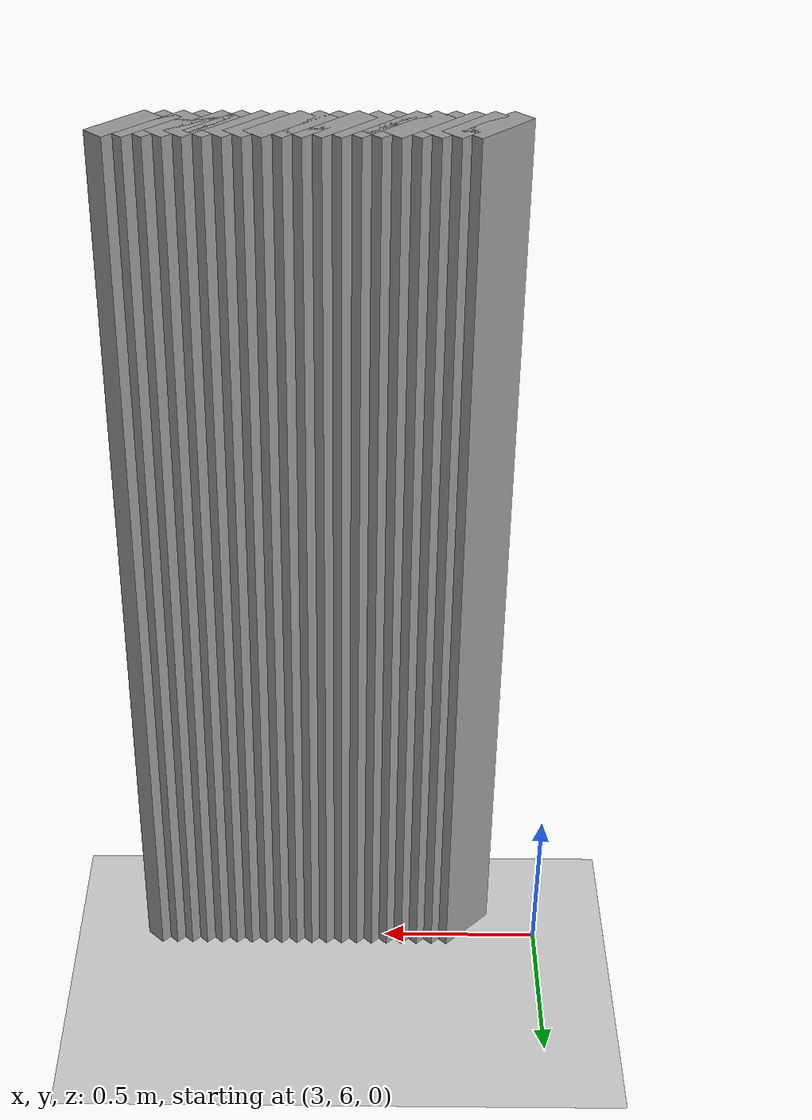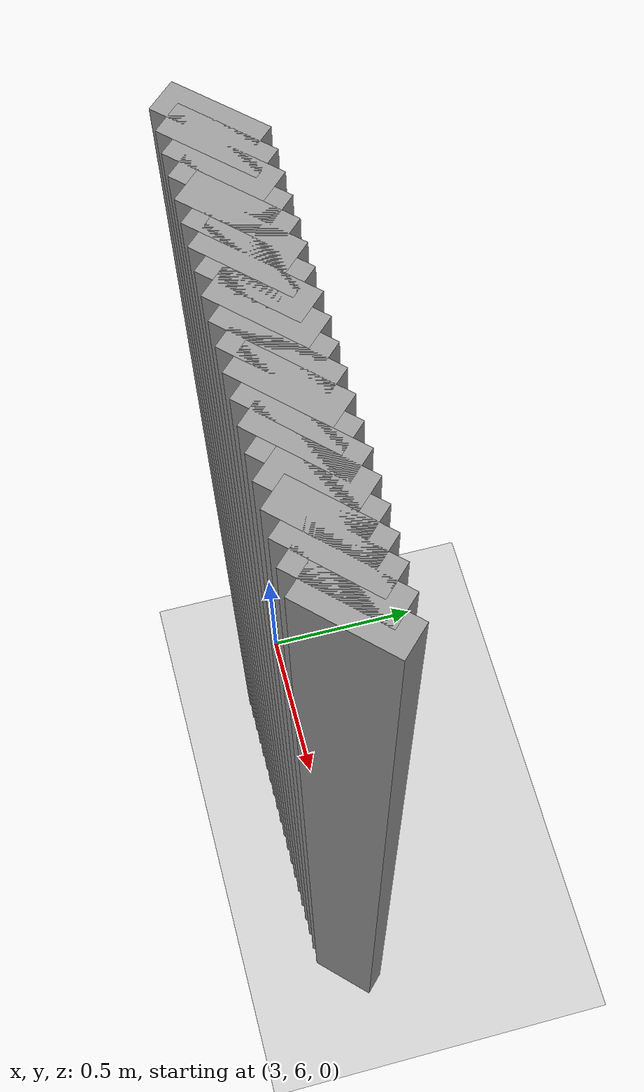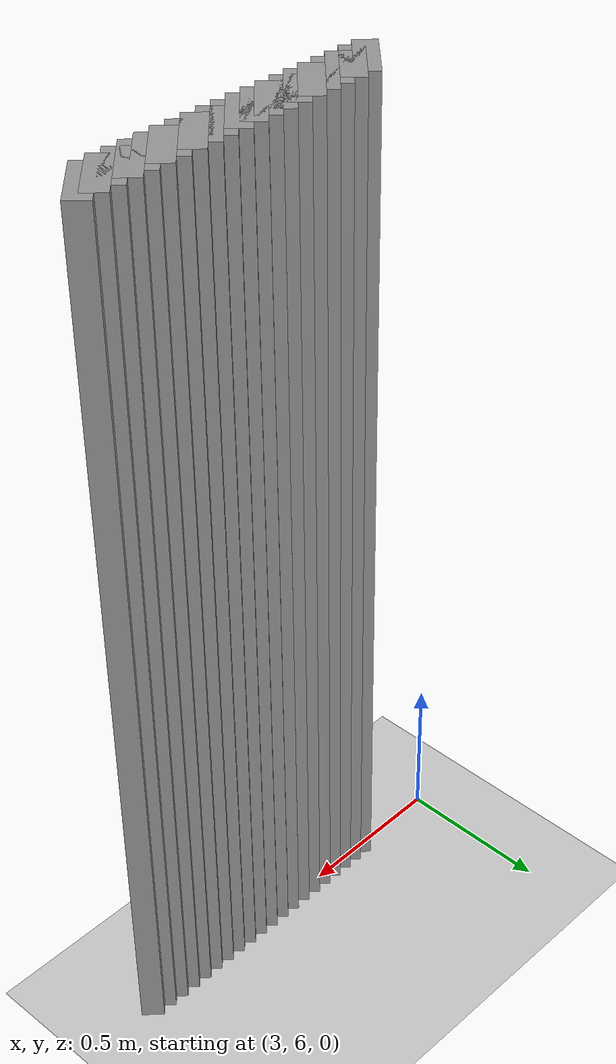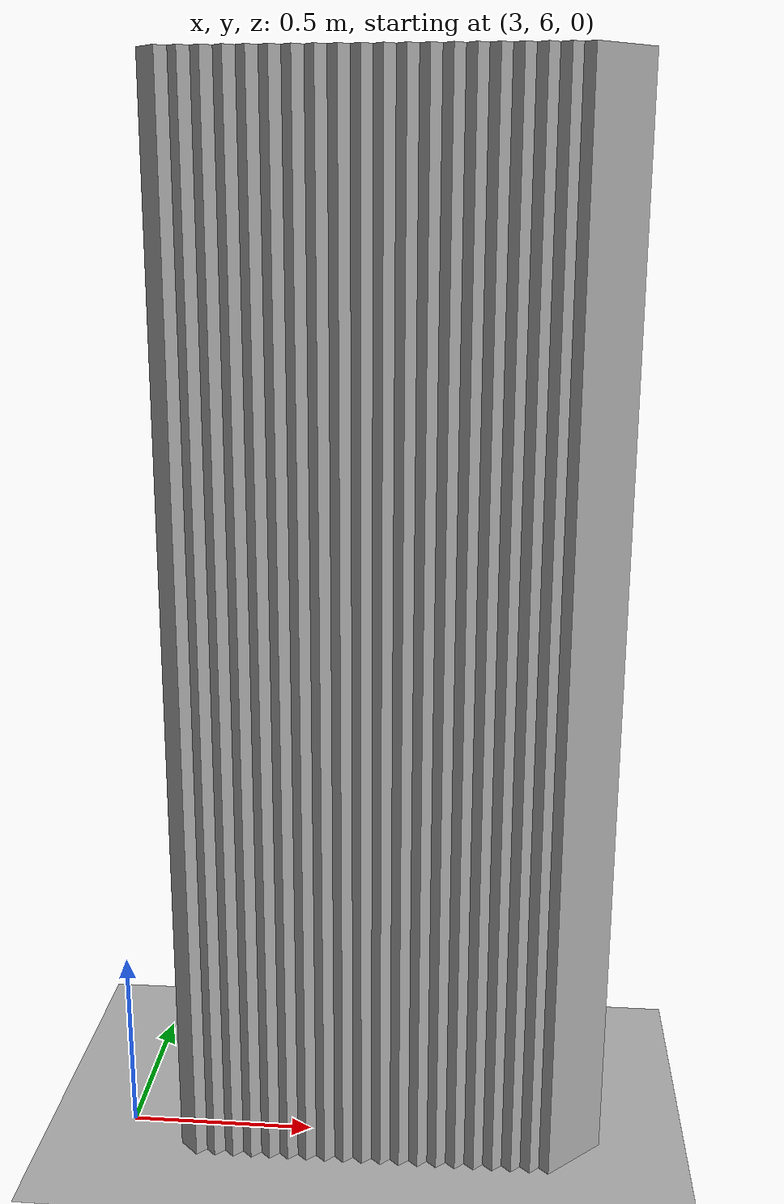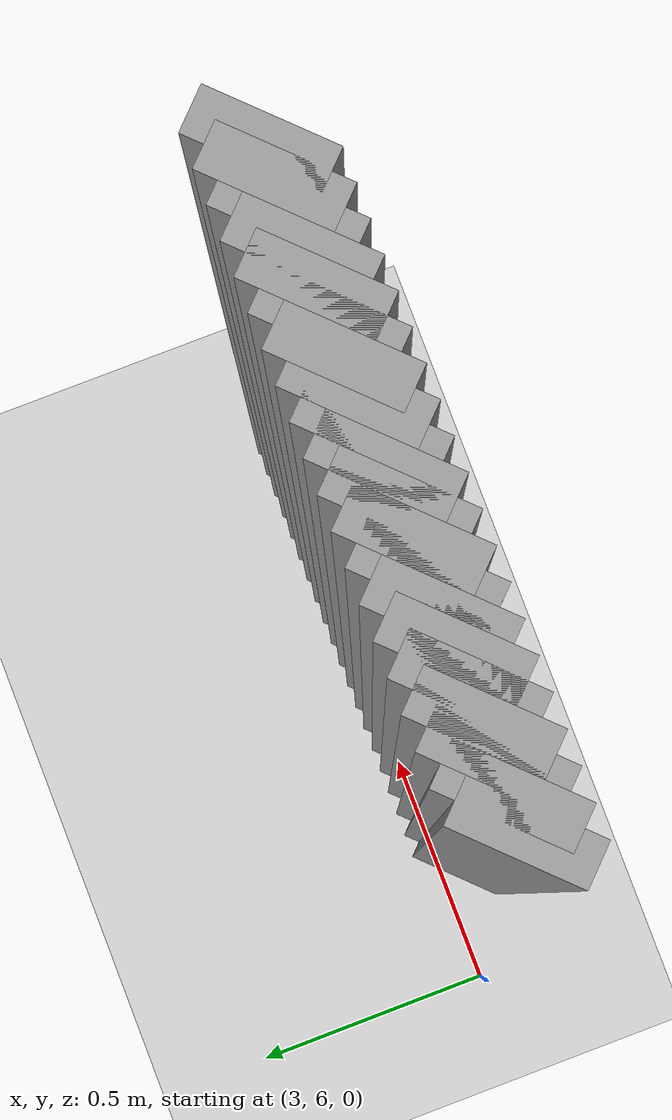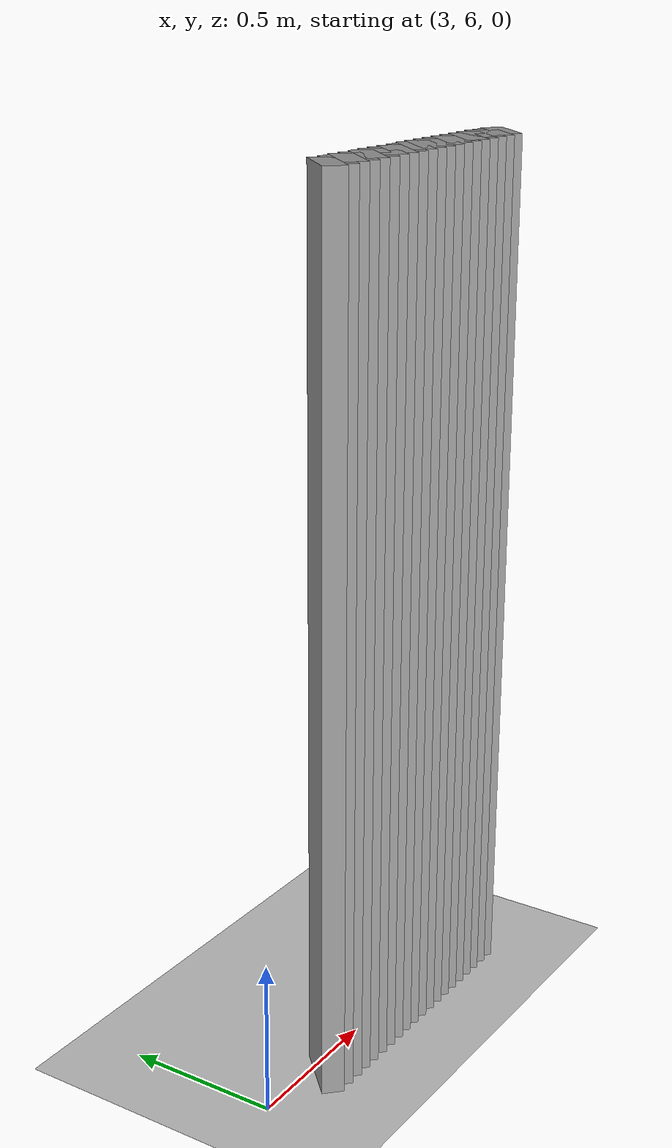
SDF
<sdf version="1.5">
 <world name="default">
  <include><uri>model://ground_plane</uri></include>
  <include><uri>model://sun</uri></include>
  <model name="grey_wall_4392">
   <static>1</static>
   <link name="link">
    <pose>3.25 5.95  1.4 0 0 -0.785398163397</pose>
    <collision name="collision"><geometry><box><size>0.0707106781187 .2  2.8</size></box></geometry></collision>
    <visual name="visual">
     <cast_shadows>0</cast_shadows>
     <geometry><box><size>0.0707106781187 .2  2.8</size></box></geometry>
     <material>
      <script>
       <uri>model://grey_wall/materials/scripts</uri>
       <uri>model://grey_wall/materials/textures</uri>
       <name>vrc/grey_wall</name>
      </script>
     </material>
    </visual>
   </link>
  </model>
  <model name="grey_wall_4393">
   <static>1</static>
   <link name="link">
    <pose>3.3 5.95  1.4 0 0 -0.785398163397</pose>
    <collision name="collision"><geometry><box><size>0.0707106781187 .2  2.8</size></box></geometry></collision>
    <visual name="visual">
     <cast_shadows>0</cast_shadows>
     <geometry><box><size>0.0707106781187 .2  2.8</size></box></geometry>
     <material>
      <script>
       <uri>model://grey_wall/materials/scripts</uri>
       <uri>model://grey_wall/materials/textures</uri>
       <name>vrc/grey_wall</name>
      </script>
     </material>
    </visual>
   </link>
  </model>
  <model name="grey_wall_4394">
   <static>1</static>
   <link name="link">
    <pose>3.35 5.95  1.4 0 0 -0.785398163397</pose>
    <collision name="collision"><geometry><box><size>0.0707106781187 .2  2.8</size></box></geometry></collision>
    <visual name="visual">
     <cast_shadows>0</cast_shadows>
     <geometry><box><size>0.0707106781187 .2  2.8</size></box></geometry>
     <material>
      <script>
       <uri>model://grey_wall/materials/scripts</uri>
       <uri>model://grey_wall/materials/textures</uri>
       <name>vrc/grey_wall</name>
      </script>
     </material>
    </visual>
   </link>
  </model>
  <model name="grey_wall_4395">
   <static>1</static>
   <link name="link">
    <pose>3.4 5.95  1.4 0 0 -0.785398163397</pose>
    <collision name="collision"><geometry><box><size>0.0707106781187 .2  2.8</size></box></geometry></collision>
    <visual name="visual">
     <cast_shadows>0</cast_shadows>
     <geometry><box><size>0.0707106781187 .2  2.8</size></box></geometry>
     <material>
      <script>
       <uri>model://grey_wall/materials/scripts</uri>
       <uri>model://grey_wall/materials/textures</uri>
       <name>vrc/grey_wall</name>
      </script>
     </material>
    </visual>
   </link>
  </model>
  <model name="grey_wall_4396">
   <static>1</static>
   <link name="link">
    <pose>3.45 5.95  1.4 0 0 -0.785398163397</pose>
    <collision name="collision"><geometry><box><size>0.0707106781187 .2  2.8</size></box></geometry></collision>
    <visual name="visual">
     <cast_shadows>0</cast_shadows>
     <geometry><box><size>0.0707106781187 .2  2.8</size></box></geometry>
     <material>
      <script>
       <uri>model://grey_wall/materials/scripts</uri>
       <uri>model://grey_wall/materials/textures</uri>
       <name>vrc/grey_wall</name>
      </script>
     </material>
    </visual>
   </link>
  </model>
  <model name="grey_wall_4397">
   <static>1</static>
   <link name="link">
    <pose>3.5 5.95  1.4 0 0 -0.785398163397</pose>
    <collision name="collision"><geometry><box><size>0.0707106781187 .2  2.8</size></box></geometry></collision>
    <visual name="visual">
     <cast_shadows>0</cast_shadows>
     <geometry><box><size>0.0707106781187 .2  2.8</size></box></geometry>
     <material>
      <script>
       <uri>model://grey_wall/materials/scripts</uri>
       <uri>model://grey_wall/materials/textures</uri>
       <name>vrc/grey_wall</name>
      </script>
     </material>
    </visual>
   </link>
  </model>
  <model name="grey_wall_4398">
   <static>1</static>
   <link name="link">
    <pose>3.55 5.95  1.4 0 0 -0.785398163397</pose>
    <collision name="collision"><geometry><box><size>0.0707106781187 .2  2.8</size></box></geometry></collision>
    <visual name="visual">
     <cast_shadows>0</cast_shadows>
     <geometry><box><size>0.0707106781187 .2  2.8</size></box></geometry>
     <material>
      <script>
       <uri>model://grey_wall/materials/scripts</uri>
       <uri>model://grey_wall/materials/textures</uri>
       <name>vrc/grey_wall</name>
      </script>
     </material>
    </visual>
   </link>
  </model>
  <model name="grey_wall_4399">
   <static>1</static>
   <link name="link">
    <pose>3.6 5.95  1.4 0 0 -0.785398163397</pose>
    <collision name="collision"><geometry><box><size>0.0707106781187 .2  2.8</size></box></geometry></collision>
    <visual name="visual">
     <cast_shadows>0</cast_shadows>
     <geometry><box><size>0.0707106781187 .2  2.8</size></box></geometry>
     <material>
      <script>
       <uri>model://grey_wall/materials/scripts</uri>
       <uri>model://grey_wall/materials/textures</uri>
       <name>vrc/grey_wall</name>
      </script>
     </material>
    </visual>
   </link>
  </model>
  <model name="grey_wall_4400">
   <static>1</static>
   <link name="link">
    <pose>3.65 5.95  1.4 0 0 -0.785398163397</pose>
    <collision name="collision"><geometry><box><size>0.0707106781187 .2  2.8</size></box></geometry></collision>
    <visual name="visual">
     <cast_shadows>0</cast_shadows>
     <geometry><box><size>0.0707106781187 .2  2.8</size></box></geometry>
     <material>
      <script>
       <uri>model://grey_wall/materials/scripts</uri>
       <uri>model://grey_wall/materials/textures</uri>
       <name>vrc/grey_wall</name>
      </script>
     </material>
    </visual>
   </link>
  </model>
  <model name="grey_wall_4401">
   <static>1</static>
   <link name="link">
    <pose>3.7 5.95  1.4 0 0 -0.785398163397</pose>
    <collision name="collision"><geometry><box><size>0.0707106781187 .2  2.8</size></box></geometry></collision>
    <visual name="visual">
     <cast_shadows>0</cast_shadows>
     <geometry><box><size>0.0707106781187 .2  2.8</size></box></geometry>
     <material>
      <script>
       <uri>model://grey_wall/materials/scripts</uri>
       <uri>model://grey_wall/materials/textures</uri>
       <name>vrc/grey_wall</name>
      </script>
     </material>
    </visual>
   </link>
  </model>
  <model name="grey_wall_4402">
   <static>1</static>
   <link name="link">
    <pose>3.75 5.95  1.4 0 0 -0.785398163397</pose>
    <collision name="collision"><geometry><box><size>0.0707106781187 .2  2.8</size></box></geometry></collision>
    <visual name="visual">
     <cast_shadows>0</cast_shadows>
     <geometry><box><size>0.0707106781187 .2  2.8</size></box></geometry>
     <material>
      <script>
       <uri>model://grey_wall/materials/scripts</uri>
       <uri>model://grey_wall/materials/textures</uri>
       <name>vrc/grey_wall</name>
      </script>
     </material>
    </visual>
   </link>
  </model>
  <model name="grey_wall_4403">
   <static>1</static>
   <link name="link">
    <pose>3.8 5.95  1.4 0 0 -0.785398163397</pose>
    <collision name="collision"><geometry><box><size>0.0707106781187 .2  2.8</size></box></geometry></collision>
    <visual name="visual">
     <cast_shadows>0</cast_shadows>
     <geometry><box><size>0.0707106781187 .2  2.8</size></box></geometry>
     <material>
      <script>
       <uri>model://grey_wall/materials/scripts</uri>
       <uri>model://grey_wall/materials/textures</uri>
       <name>vrc/grey_wall</name>
      </script>
     </material>
    </visual>
   </link>
  </model>
  <model name="grey_wall_4404">
   <static>1</static>
   <link name="link">
    <pose>3.85 5.95  1.4 0 0 -0.785398163397</pose>
    <collision name="collision"><geometry><box><size>0.0707106781187 .2  2.8</size></box></geometry></collision>
    <visual name="visual">
     <cast_shadows>0</cast_shadows>
     <geometry><box><size>0.0707106781187 .2  2.8</size></box></geometry>
     <material>
      <script>
       <uri>model://grey_wall/materials/scripts</uri>
       <uri>model://grey_wall/materials/textures</uri>
       <name>vrc/grey_wall</name>
      </script>
     </material>
    </visual>
   </link>
  </model>
  <model name="grey_wall_4405">
   <static>1</static>
   <link name="link">
    <pose>3.9 5.95  1.4 0 0 -0.785398163397</pose>
    <collision name="collision"><geometry><box><size>0.0707106781187 .2  2.8</size></box></geometry></collision>
    <visual name="visual">
     <cast_shadows>0</cast_shadows>
     <geometry><box><size>0.0707106781187 .2  2.8</size></box></geometry>
     <material>
      <script>
       <uri>model://grey_wall/materials/scripts</uri>
       <uri>model://grey_wall/materials/textures</uri>
       <name>vrc/grey_wall</name>
      </script>
     </material>
    </visual>
   </link>
  </model>
  <model name="grey_wall_4406">
   <static>1</static>
   <link name="link">
    <pose>3.95 5.95  1.4 0 0 -0.785398163397</pose>
    <collision name="collision"><geometry><box><size>0.0707106781187 .2  2.8</size></box></geometry></collision>
    <visual name="visual">
     <cast_shadows>0</cast_shadows>
     <geometry><box><size>0.0707106781187 .2  2.8</size></box></geometry>
     <material>
      <script>
       <uri>model://grey_wall/materials/scripts</uri>
       <uri>model://grey_wall/materials/textures</uri>
       <name>vrc/grey_wall</name>
      </script>
     </material>
    </visual>
   </link>
  </model>
  <model name="grey_wall_4407">
   <static>1</static>
   <link name="link">
    <pose>4.0 5.95  1.4 0 0 -0.785398163397</pose>
    <collision name="collision"><geometry><box><size>0.0707106781187 .2  2.8</size></box></geometry></collision>
    <visual name="visual">
     <cast_shadows>0</cast_shadows>
     <geometry><box><size>0.0707106781187 .2  2.8</size></box></geometry>
     <material>
      <script>
       <uri>model://grey_wall/materials/scripts</uri>
       <uri>model://grey_wall/materials/textures</uri>
       <name>vrc/grey_wall</name>
      </script>
     </material>
    </visual>
   </link>
  </model>
  <model name="grey_wall_4408">
   <static>1</static>
   <link name="link">
    <pose>4.05 5.95  1.4 0 0 -0.785398163397</pose>
    <collision name="collision"><geometry><box><size>0.0707106781187 .2  2.8</size></box></geometry></collision>
    <visual name="visual">
     <cast_shadows>0</cast_shadows>
     <geometry><box><size>0.0707106781187 .2  2.8</size></box></geometry>
     <material>
      <script>
       <uri>model://grey_wall/materials/scripts</uri>
       <uri>model://grey_wall/materials/textures</uri>
       <name>vrc/grey_wall</name>
      </script>
     </material>
    </visual>
   </link>
  </model>
  <model name="grey_wall_4409">
   <static>1</static>
   <link name="link">
    <pose>4.1 5.95  1.4 0 0 -0.785398163397</pose>
    <collision name="collision"><geometry><box><size>0.0707106781187 .2  2.8</size></box></geometry></collision>
    <visual name="visual">
     <cast_shadows>0</cast_shadows>
     <geometry><box><size>0.0707106781187 .2  2.8</size></box></geometry>
     <material>
      <script>
       <uri>model://grey_wall/materials/scripts</uri>
       <uri>model://grey_wall/materials/textures</uri>
       <name>vrc/grey_wall</name>
      </script>
     </material>
    </visual>
   </link>
  </model>
  <model name="grey_wall_4410">
   <static>1</static>
   <link name="link">
    <pose>4.15 5.95  1.4 0 0 -0.785398163397</pose>
    <collision name="collision"><geometry><box><size>0.0707106781187 .2  2.8</size></box></geometry></collision>
    <visual name="visual">
     <cast_shadows>0</cast_shadows>
     <geometry><box><size>0.0707106781187 .2  2.8</size></box></geometry>
     <material>
      <script>
       <uri>model://grey_wall/materials/scripts</uri>
       <uri>model://grey_wall/materials/textures</uri>
       <name>vrc/grey_wall</name>
      </script>
     </material>
    </visual>
   </link>
  </model>
  <model name="grey_wall_4411">
   <static>1</static>
   <link name="link">
    <pose>4.2 5.95  1.4 0 0 -0.785398163397</pose>
    <collision name="collision"><geometry><box><size>0.0707106781187 .2  2.8</size></box></geometry></collision>
    <visual name="visual">
     <cast_shadows>0</cast_shadows>
     <geometry><box><size>0.0707106781187 .2  2.8</size></box></geometry>
     <material>
      <script>
       <uri>model://grey_wall/materials/scripts</uri>
       <uri>model://grey_wall/materials/textures</uri>
       <name>vrc/grey_wall</name>
      </script>
     </material>
    </visual>
   </link>
  </model>
 </world>
</sdf>
